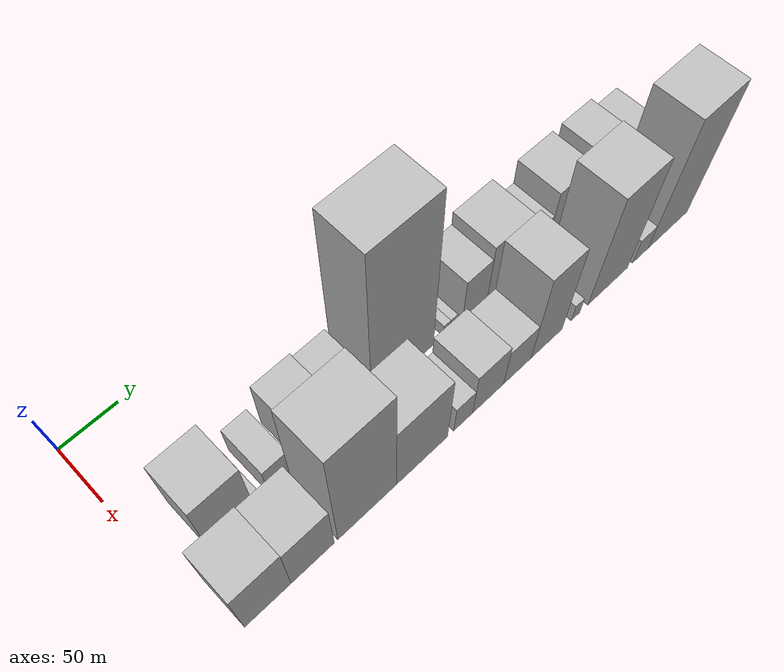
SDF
<sdf version="1.6">
 <world name="default">
  <model name="building_13">
   <static>1</static>
   <pose>100.0000 49.8093 0 0.000000 0.000000 0.000000</pose>
   <link name="link">
    <pose>0 0 34.50 0 0 0</pose>
    <collision name="collision"><geometry><box><size>40.0000 38.9564 69.0000</size></box></geometry></collision>
    <visual name="visual">
     <cast_shadows>0</cast_shadows>
     <geometry><box><size>40.0000 38.9564 69.0000</size></box></geometry>
     <material>
      <script>
       <uri>model://HANNAS_wall/materials/scripts</uri>
       <uri>model://HANNAS_wall/materials/textures</uri>
       <name>vrc/HANNAS_wall</name>
      </script>
     </material>
    </visual>
   </link>
  </model>
  <model name="building_14">
   <static>1</static>
   <pose>100.0000 72.4970 0 0.000000 0.000000 0.000000</pose>
   <link name="link">
    <pose>0 0 7.50 0 0 0</pose>
    <collision name="collision"><geometry><box><size>40.0000 6.4190 15.0000</size></box></geometry></collision>
    <visual name="visual">
     <cast_shadows>0</cast_shadows>
     <geometry><box><size>40.0000 6.4190 15.0000</size></box></geometry>
     <material>
      <script>
       <uri>model://HANNAS_wall/materials/scripts</uri>
       <uri>model://HANNAS_wall/materials/textures</uri>
       <name>vrc/HANNAS_wall</name>
      </script>
     </material>
    </visual>
   </link>
  </model>
  <model name="building_15">
   <static>1</static>
   <pose>100.0000 92.3893 0 0.000000 0.000000 0.000000</pose>
   <link name="link">
    <pose>0 0 18.00 0 0 0</pose>
    <collision name="collision"><geometry><box><size>40.0000 21.3657 36.0000</size></box></geometry></collision>
    <visual name="visual">
     <cast_shadows>0</cast_shadows>
     <geometry><box><size>40.0000 21.3657 36.0000</size></box></geometry>
     <material>
      <script>
       <uri>model://HANNAS_wall/materials/scripts</uri>
       <uri>model://HANNAS_wall/materials/textures</uri>
       <name>vrc/HANNAS_wall</name>
      </script>
     </material>
    </visual>
   </link>
  </model>
  <model name="building_16">
   <static>1</static>
   <pose>100.0000 126.6159 0 0.000000 0.000000 0.000000</pose>
   <link name="link">
    <pose>0 0 30.00 0 0 0</pose>
    <collision name="collision"><geometry><box><size>40.0000 33.0874 60.0000</size></box></geometry></collision>
    <visual name="visual">
     <cast_shadows>0</cast_shadows>
     <geometry><box><size>40.0000 33.0874 60.0000</size></box></geometry>
     <material>
      <script>
       <uri>model://HANNAS_wall/materials/scripts</uri>
       <uri>model://HANNAS_wall/materials/textures</uri>
       <name>vrc/HANNAS_wall</name>
      </script>
     </material>
    </visual>
   </link>
  </model>
  <model name="building_17">
   <static>1</static>
   <pose>100.0000 157.7660 0 0.000000 0.000000 0.000000</pose>
   <link name="link">
    <pose>0 0 27.00 0 0 0</pose>
    <collision name="collision"><geometry><box><size>40.0000 29.2128 54.0000</size></box></geometry></collision>
    <visual name="visual">
     <cast_shadows>0</cast_shadows>
     <geometry><box><size>40.0000 29.2128 54.0000</size></box></geometry>
     <material>
      <script>
       <uri>model://HANNAS_wall/materials/scripts</uri>
       <uri>model://HANNAS_wall/materials/textures</uri>
       <name>vrc/HANNAS_wall</name>
      </script>
     </material>
    </visual>
   </link>
  </model>
  <model name="building_18">
   <static>1</static>
   <pose>100.0000 205.2900 0 0.000000 0.000000 0.000000</pose>
   <link name="link">
    <pose>0 0 94.50 0 0 0</pose>
    <collision name="collision"><geometry><box><size>40.0000 59.8351 189.0000</size></box></geometry></collision>
    <visual name="visual">
     <cast_shadows>0</cast_shadows>
     <geometry><box><size>40.0000 59.8351 189.0000</size></box></geometry>
     <material>
      <script>
       <uri>model://HANNAS_wall/materials/scripts</uri>
       <uri>model://HANNAS_wall/materials/textures</uri>
       <name>vrc/HANNAS_wall</name>
      </script>
     </material>
    </visual>
   </link>
  </model>
  <model name="building_19">
   <static>1</static>
   <pose>100.0000 248.7032 0 0.000000 0.000000 0.000000</pose>
   <link name="link">
    <pose>0 0 7.50 0 0 0</pose>
    <collision name="collision"><geometry><box><size>40.0000 6.9915 15.0000</size></box></geometry></collision>
    <visual name="visual">
     <cast_shadows>0</cast_shadows>
     <geometry><box><size>40.0000 6.9915 15.0000</size></box></geometry>
     <material>
      <script>
       <uri>model://HANNAS_wall/materials/scripts</uri>
       <uri>model://HANNAS_wall/materials/textures</uri>
       <name>vrc/HANNAS_wall</name>
      </script>
     </material>
    </visual>
   </link>
  </model>
  <model name="building_20">
   <static>1</static>
   <pose>100.0000 255.6167 0 0.000000 0.000000 0.000000</pose>
   <link name="link">
    <pose>0 0 7.50 0 0 0</pose>
    <collision name="collision"><geometry><box><size>40.0000 6.8355 15.0000</size></box></geometry></collision>
    <visual name="visual">
     <cast_shadows>0</cast_shadows>
     <geometry><box><size>40.0000 6.8355 15.0000</size></box></geometry>
     <material>
      <script>
       <uri>model://HANNAS_wall/materials/scripts</uri>
       <uri>model://HANNAS_wall/materials/textures</uri>
       <name>vrc/HANNAS_wall</name>
      </script>
     </material>
    </visual>
   </link>
  </model>
  <model name="building_21">
   <static>1</static>
   <pose>100.0000 278.0232 0 0.000000 0.000000 0.000000</pose>
   <link name="link">
    <pose>0 0 25.50 0 0 0</pose>
    <collision name="collision"><geometry><box><size>40.0000 25.9775 51.0000</size></box></geometry></collision>
    <visual name="visual">
     <cast_shadows>0</cast_shadows>
     <geometry><box><size>40.0000 25.9775 51.0000</size></box></geometry>
     <material>
      <script>
       <uri>model://HANNAS_wall/materials/scripts</uri>
       <uri>model://HANNAS_wall/materials/textures</uri>
       <name>vrc/HANNAS_wall</name>
      </script>
     </material>
    </visual>
   </link>
  </model>
  <model name="building_22">
   <static>1</static>
   <pose>100.0000 310.5618 0 0.000000 0.000000 0.000000</pose>
   <link name="link">
    <pose>0 0 33.00 0 0 0</pose>
    <collision name="collision"><geometry><box><size>40.0000 39.0997 66.0000</size></box></geometry></collision>
    <visual name="visual">
     <cast_shadows>0</cast_shadows>
     <geometry><box><size>40.0000 39.0997 66.0000</size></box></geometry>
     <material>
      <script>
       <uri>model://HANNAS_wall/materials/scripts</uri>
       <uri>model://HANNAS_wall/materials/textures</uri>
       <name>vrc/HANNAS_wall</name>
      </script>
     </material>
    </visual>
   </link>
  </model>
  <model name="building_23">
   <static>1</static>
   <pose>100.0000 346.8097 0 0.000000 0.000000 0.000000</pose>
   <link name="link">
    <pose>0 0 18.00 0 0 0</pose>
    <collision name="collision"><geometry><box><size>40.0000 19.3961 36.0000</size></box></geometry></collision>
    <visual name="visual">
     <cast_shadows>0</cast_shadows>
     <geometry><box><size>40.0000 19.3961 36.0000</size></box></geometry>
     <material>
      <script>
       <uri>model://HANNAS_wall/materials/scripts</uri>
       <uri>model://HANNAS_wall/materials/textures</uri>
       <name>vrc/HANNAS_wall</name>
      </script>
     </material>
    </visual>
   </link>
  </model>
  <model name="building_24">
   <static>1</static>
   <pose>100.0000 374.8500 0 0.000000 0.000000 0.000000</pose>
   <link name="link">
    <pose>0 0 31.50 0 0 0</pose>
    <collision name="collision"><geometry><box><size>40.0000 36.6845 63.0000</size></box></geometry></collision>
    <visual name="visual">
     <cast_shadows>0</cast_shadows>
     <geometry><box><size>40.0000 36.6845 63.0000</size></box></geometry>
     <material>
      <script>
       <uri>model://HANNAS_wall/materials/scripts</uri>
       <uri>model://HANNAS_wall/materials/textures</uri>
       <name>vrc/HANNAS_wall</name>
      </script>
     </material>
    </visual>
   </link>
  </model>
  <model name="building_25">
   <static>1</static>
   <pose>100.0000 396.6404 0 0.000000 0.000000 0.000000</pose>
   <link name="link">
    <pose>0 0 7.50 0 0 0</pose>
    <collision name="collision"><geometry><box><size>40.0000 6.8963 15.0000</size></box></geometry></collision>
    <visual name="visual">
     <cast_shadows>0</cast_shadows>
     <geometry><box><size>40.0000 6.8963 15.0000</size></box></geometry>
     <material>
      <script>
       <uri>model://HANNAS_wall/materials/scripts</uri>
       <uri>model://HANNAS_wall/materials/textures</uri>
       <name>vrc/HANNAS_wall</name>
      </script>
     </material>
    </visual>
   </link>
  </model>
  <model name="building_26">
   <static>1</static>
   <pose>100.0000 419.2302 0 0.000000 0.000000 0.000000</pose>
   <link name="link">
    <pose>0 0 31.50 0 0 0</pose>
    <collision name="collision"><geometry><box><size>40.0000 32.2831 63.0000</size></box></geometry></collision>
    <visual name="visual">
     <cast_shadows>0</cast_shadows>
     <geometry><box><size>40.0000 32.2831 63.0000</size></box></geometry>
     <material>
      <script>
       <uri>model://HANNAS_wall/materials/scripts</uri>
       <uri>model://HANNAS_wall/materials/textures</uri>
       <name>vrc/HANNAS_wall</name>
      </script>
     </material>
    </visual>
   </link>
  </model>
  <model name="building_27">
   <static>1</static>
   <pose>100.0000 455.7268 0 0.000000 0.000000 0.000000</pose>
   <link name="link">
    <pose>0 0 24.00 0 0 0</pose>
    <collision name="collision"><geometry><box><size>40.0000 26.7102 48.0000</size></box></geometry></collision>
    <visual name="visual">
     <cast_shadows>0</cast_shadows>
     <geometry><box><size>40.0000 26.7102 48.0000</size></box></geometry>
     <material>
      <script>
       <uri>model://HANNAS_wall/materials/scripts</uri>
       <uri>model://HANNAS_wall/materials/textures</uri>
       <name>vrc/HANNAS_wall</name>
      </script>
     </material>
    </visual>
   </link>
  </model>
  <model name="building_41">
   <static>1</static>
   <pose>155.0000 34.3136 0 0.000000 0.000000 0.000000</pose>
   <link name="link">
    <pose>0 0 34.50 0 0 0</pose>
    <collision name="collision"><geometry><box><size>40.0000 38.1132 69.0000</size></box></geometry></collision>
    <visual name="visual">
     <cast_shadows>0</cast_shadows>
     <geometry><box><size>40.0000 38.1132 69.0000</size></box></geometry>
     <material>
      <script>
       <uri>model://HANNAS_wall/materials/scripts</uri>
       <uri>model://HANNAS_wall/materials/textures</uri>
       <name>vrc/HANNAS_wall</name>
      </script>
     </material>
    </visual>
   </link>
  </model>
  <model name="building_42">
   <static>1</static>
   <pose>155.0000 71.6849 0 0.000000 0.000000 0.000000</pose>
   <link name="link">
    <pose>0 0 33.00 0 0 0</pose>
    <collision name="collision"><geometry><box><size>40.0000 36.6293 66.0000</size></box></geometry></collision>
    <visual name="visual">
     <cast_shadows>0</cast_shadows>
     <geometry><box><size>40.0000 36.6293 66.0000</size></box></geometry>
     <material>
      <script>
       <uri>model://HANNAS_wall/materials/scripts</uri>
       <uri>model://HANNAS_wall/materials/textures</uri>
       <name>vrc/HANNAS_wall</name>
      </script>
     </material>
    </visual>
   </link>
  </model>
  <model name="building_43">
   <static>1</static>
   <pose>155.0000 119.0424 0 0.000000 0.000000 0.000000</pose>
   <link name="link">
    <pose>0 0 73.50 0 0 0</pose>
    <collision name="collision"><geometry><box><size>40.0000 52.0858 147.0000</size></box></geometry></collision>
    <visual name="visual">
     <cast_shadows>0</cast_shadows>
     <geometry><box><size>40.0000 52.0858 147.0000</size></box></geometry>
     <material>
      <script>
       <uri>model://HANNAS_wall/materials/scripts</uri>
       <uri>model://HANNAS_wall/materials/textures</uri>
       <name>vrc/HANNAS_wall</name>
      </script>
     </material>
    </visual>
   </link>
  </model>
  <model name="building_44">
   <static>1</static>
   <pose>155.0000 169.1389 0 0.000000 0.000000 0.000000</pose>
   <link name="link">
    <pose>0 0 45.00 0 0 0</pose>
    <collision name="collision"><geometry><box><size>40.0000 48.1072 90.0000</size></box></geometry></collision>
    <visual name="visual">
     <cast_shadows>0</cast_shadows>
     <geometry><box><size>40.0000 48.1072 90.0000</size></box></geometry>
     <material>
      <script>
       <uri>model://HANNAS_wall/materials/scripts</uri>
       <uri>model://HANNAS_wall/materials/textures</uri>
       <name>vrc/HANNAS_wall</name>
      </script>
     </material>
    </visual>
   </link>
  </model>
  <model name="building_45">
   <static>1</static>
   <pose>155.0000 208.3735 0 0.000000 0.000000 0.000000</pose>
   <link name="link">
    <pose>0 0 18.00 0 0 0</pose>
    <collision name="collision"><geometry><box><size>40.0000 18.3621 36.0000</size></box></geometry></collision>
    <visual name="visual">
     <cast_shadows>0</cast_shadows>
     <geometry><box><size>40.0000 18.3621 36.0000</size></box></geometry>
     <material>
      <script>
       <uri>model://HANNAS_wall/materials/scripts</uri>
       <uri>model://HANNAS_wall/materials/textures</uri>
       <name>vrc/HANNAS_wall</name>
      </script>
     </material>
    </visual>
   </link>
  </model>
  <model name="building_46">
   <static>1</static>
   <pose>155.0000 232.9988 0 0.000000 0.000000 0.000000</pose>
   <link name="link">
    <pose>0 0 28.50 0 0 0</pose>
    <collision name="collision"><geometry><box><size>40.0000 30.8885 57.0000</size></box></geometry></collision>
    <visual name="visual">
     <cast_shadows>0</cast_shadows>
     <geometry><box><size>40.0000 30.8885 57.0000</size></box></geometry>
     <material>
      <script>
       <uri>model://HANNAS_wall/materials/scripts</uri>
       <uri>model://HANNAS_wall/materials/textures</uri>
       <name>vrc/HANNAS_wall</name>
      </script>
     </material>
    </visual>
   </link>
  </model>
  <model name="building_47">
   <static>1</static>
   <pose>155.0000 262.6371 0 0.000000 0.000000 0.000000</pose>
   <link name="link">
    <pose>0 0 24.00 0 0 0</pose>
    <collision name="collision"><geometry><box><size>40.0000 28.3881 48.0000</size></box></geometry></collision>
    <visual name="visual">
     <cast_shadows>0</cast_shadows>
     <geometry><box><size>40.0000 28.3881 48.0000</size></box></geometry>
     <material>
      <script>
       <uri>model://HANNAS_wall/materials/scripts</uri>
       <uri>model://HANNAS_wall/materials/textures</uri>
       <name>vrc/HANNAS_wall</name>
      </script>
     </material>
    </visual>
   </link>
  </model>
  <model name="building_48">
   <static>1</static>
   <pose>155.0000 293.1908 0 0.000000 0.000000 0.000000</pose>
   <link name="link">
    <pose>0 0 54.00 0 0 0</pose>
    <collision name="collision"><geometry><box><size>40.0000 32.7194 108.0000</size></box></geometry></collision>
    <visual name="visual">
     <cast_shadows>0</cast_shadows>
     <geometry><box><size>40.0000 32.7194 108.0000</size></box></geometry>
     <material>
      <script>
       <uri>model://HANNAS_wall/materials/scripts</uri>
       <uri>model://HANNAS_wall/materials/textures</uri>
       <name>vrc/HANNAS_wall</name>
      </script>
     </material>
    </visual>
   </link>
  </model>
  <model name="building_49">
   <static>1</static>
   <pose>155.0000 324.1597 0 0.000000 0.000000 0.000000</pose>
   <link name="link">
    <pose>0 0 10.50 0 0 0</pose>
    <collision name="collision"><geometry><box><size>40.0000 9.2184 21.0000</size></box></geometry></collision>
    <visual name="visual">
     <cast_shadows>0</cast_shadows>
     <geometry><box><size>40.0000 9.2184 21.0000</size></box></geometry>
     <material>
      <script>
       <uri>model://HANNAS_wall/materials/scripts</uri>
       <uri>model://HANNAS_wall/materials/textures</uri>
       <name>vrc/HANNAS_wall</name>
      </script>
     </material>
    </visual>
   </link>
  </model>
  <model name="building_50">
   <static>1</static>
   <pose>155.0000 359.9846 0 0.000000 0.000000 0.000000</pose>
   <link name="link">
    <pose>0 0 66.00 0 0 0</pose>
    <collision name="collision"><geometry><box><size>40.0000 44.4313 132.0000</size></box></geometry></collision>
    <visual name="visual">
     <cast_shadows>0</cast_shadows>
     <geometry><box><size>40.0000 44.4313 132.0000</size></box></geometry>
     <material>
      <script>
       <uri>model://HANNAS_wall/materials/scripts</uri>
       <uri>model://HANNAS_wall/materials/textures</uri>
       <name>vrc/HANNAS_wall</name>
      </script>
     </material>
    </visual>
   </link>
  </model>
  <model name="building_51">
   <static>1</static>
   <pose>155.0000 397.1785 0 0.000000 0.000000 0.000000</pose>
   <link name="link">
    <pose>0 0 15.00 0 0 0</pose>
    <collision name="collision"><geometry><box><size>40.0000 17.9567 30.0000</size></box></geometry></collision>
    <visual name="visual">
     <cast_shadows>0</cast_shadows>
     <geometry><box><size>40.0000 17.9567 30.0000</size></box></geometry>
     <material>
      <script>
       <uri>model://HANNAS_wall/materials/scripts</uri>
       <uri>model://HANNAS_wall/materials/textures</uri>
       <name>vrc/HANNAS_wall</name>
      </script>
     </material>
    </visual>
   </link>
  </model>
  <model name="building_52">
   <static>1</static>
   <pose>155.0000 429.4531 0 0.000000 0.000000 0.000000</pose>
   <link name="link">
    <pose>0 0 73.50 0 0 0</pose>
    <collision name="collision"><geometry><box><size>40.0000 46.5926 147.0000</size></box></geometry></collision>
    <visual name="visual">
     <cast_shadows>0</cast_shadows>
     <geometry><box><size>40.0000 46.5926 147.0000</size></box></geometry>
     <material>
      <script>
       <uri>model://HANNAS_wall/materials/scripts</uri>
       <uri>model://HANNAS_wall/materials/textures</uri>
       <name>vrc/HANNAS_wall</name>
      </script>
     </material>
    </visual>
   </link>
  </model>
 </world>
</sdf>
